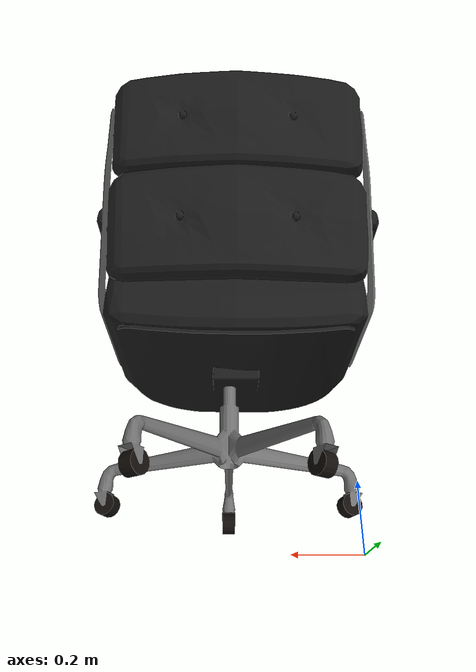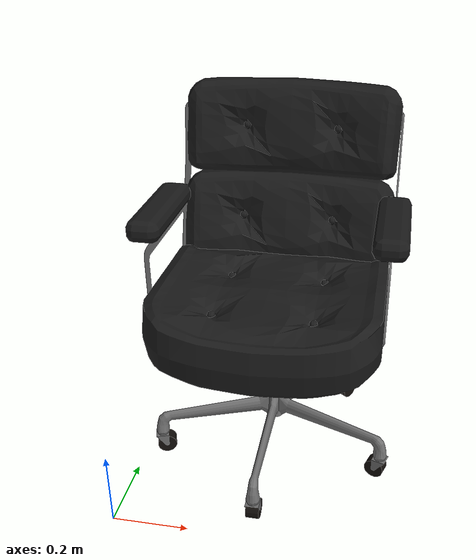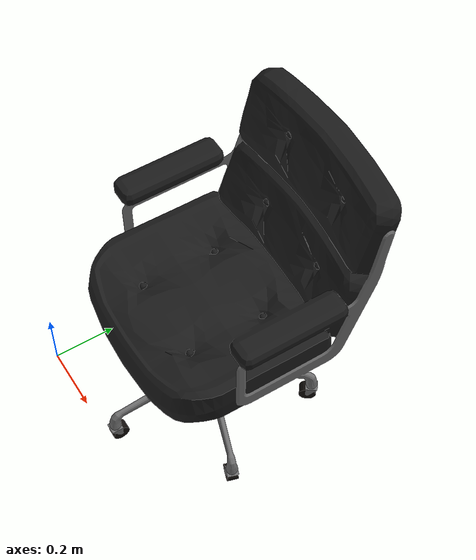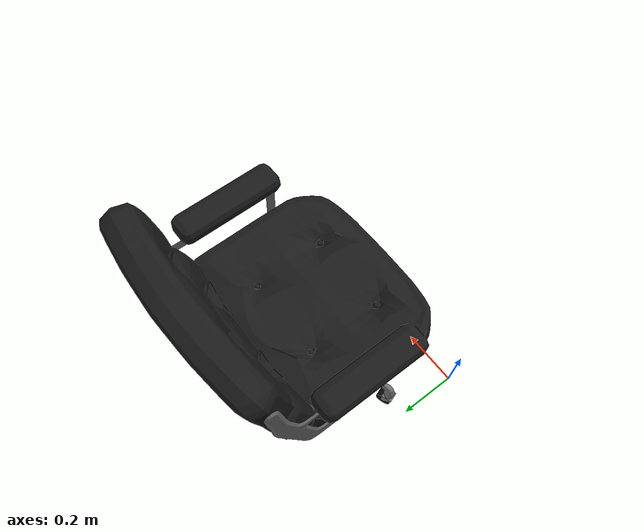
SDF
<?xml version="1.0" ?>
<sdf version="1.5">
  <model name="chair">
    <link name="link">
      <inertial>
        <pose>0 0 0.15 0 0 0</pose>
        <mass>10</mass>
        <inertia>
          <ixx>0.1</ixx>
          <ixy>0</ixy>
          <ixz>0</ixz>
          <iyy>0.1</iyy>
          <iyz>0</iyz>
          <izz>0.1</izz>
        </inertia>
      </inertial>
      <collision name="collision">
        <pose>0 0 0.05 0 0 0</pose>
        <geometry>
          <cylinder>
            <radius>0.35</radius>
            <length>0.05</length>
          </cylinder>
        </geometry>
        <surface>
          <friction>
            <ode>
              <mu>30.0</mu>
              <mu2>30.0</mu2>
            </ode>
          </friction>
        </surface>
      </collision>
      <visual name="visual">
        <pose>0 0 0.05 0 0 0</pose>
        <geometry>
          <mesh>
            <uri>model://chair/meshes/chair.dae</uri>
          </mesh>
        </geometry>
      </visual>
    </link>
  </model>
</sdf>
